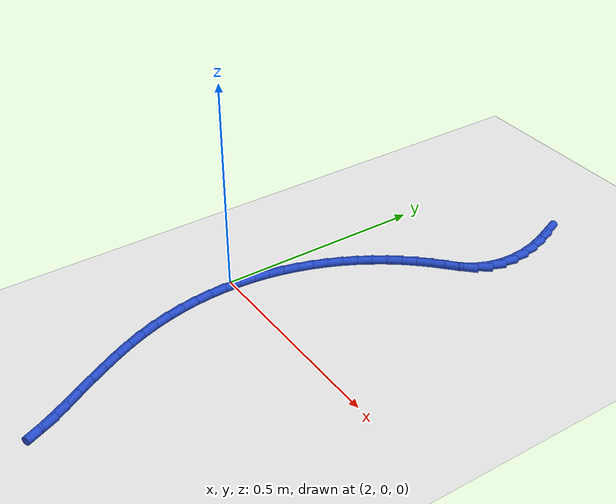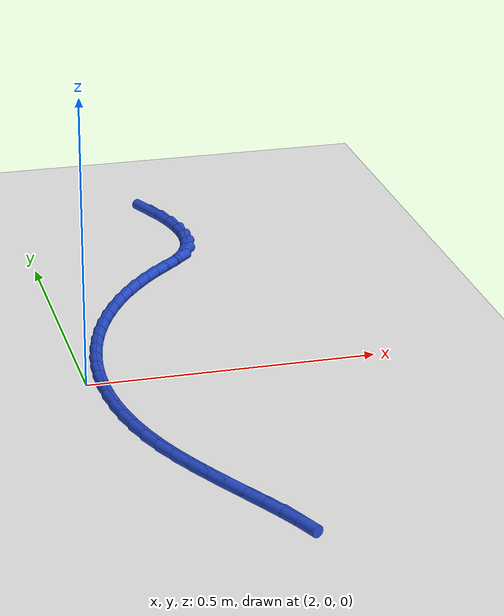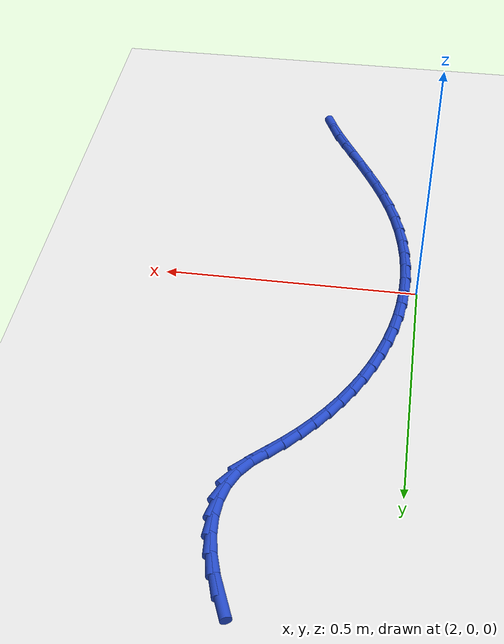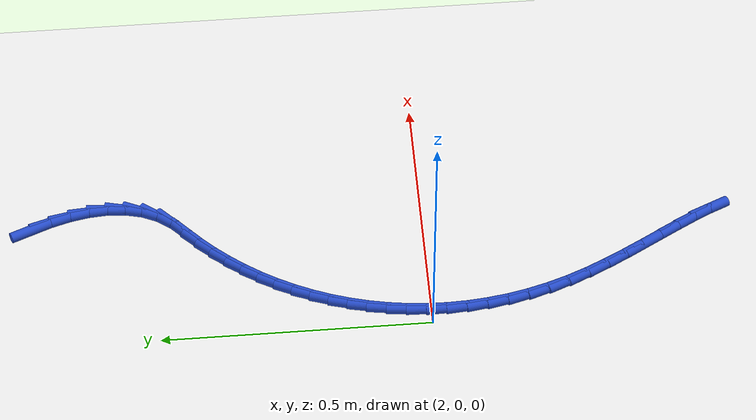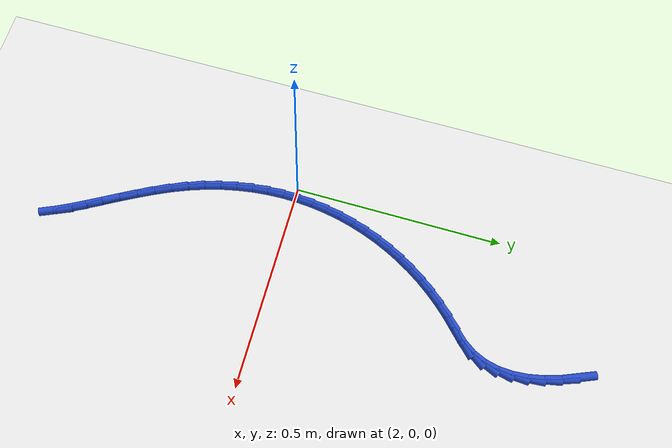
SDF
<sdf version="1.6">
 <world name="default">
  <model name="ground_plane">
   <static>1</static>
   <link name="link">
    <collision name="collision">
     <geometry><plane><normal>0 0 1</normal><size>100 100</size></plane></geometry>
     <surface><friction><ode><mu>100</mu><mu2>50</mu2></ode></friction></surface>
    </collision>
    <visual name="visual">
     <cast_shadows>0</cast_shadows>
     <geometry><plane><normal>0 0 1</normal><size>100 100</size></plane></geometry>
     <material>
      <script><uri>file://media/materials/scripts/gazebo.material</uri><name>Gazebo/WhiteGlow</name></script>
     </material>
    </visual>
   </link>
  </model>
  <model name="line">
   <link name="link_96">
    <pose>2.265692215892379 0.7318029230808033 0.01 0 1.57 -1.181016216009132</pose>
    <collision name="collision">
     <geometry><cylinder><radius>0.01</radius><length>0.08</length></cylinder></geometry>
    </collision>
    <visual name="visual">
     <material>
      <script><name>Gazebo/Blue</name><uri>file://media/materials/scripts/gazebo.material</uri></script>
     </material>
     <geometry><cylinder><radius>0.01</radius><length>0.08</length></cylinder></geometry>
    </visual>
   </link>
   <link name="link_97">
    <pose>2.280724212482479 0.6952107283278746 0.01 0 1.57 -1.2711691475474403</pose>
    <collision name="collision">
     <geometry><cylinder><radius>0.01</radius><length>0.08</length></cylinder></geometry>
    </collision>
    <visual name="visual">
     <material>
      <script><name>Gazebo/Blue</name><uri>file://media/materials/scripts/gazebo.material</uri></script>
     </material>
     <geometry><cylinder><radius>0.01</radius><length>0.08</length></cylinder></geometry>
    </visual>
   </link>
   <link name="link_98">
    <pose>2.2920473858776633 0.6585575901066739 0.01 0 1.57 -1.3741228434072295</pose>
    <collision name="collision">
     <geometry><cylinder><radius>0.01</radius><length>0.08</length></cylinder></geometry>
    </collision>
    <visual name="visual">
     <material>
      <script><name>Gazebo/Blue</name><uri>file://media/materials/scripts/gazebo.material</uri></script>
     </material>
     <geometry><cylinder><radius>0.01</radius><length>0.08</length></cylinder></geometry>
    </visual>
   </link>
   <link name="link_99">
    <pose>2.2992621877941346 0.6223476390954321 0.01 0 1.57 -1.4941831034301154</pose>
    <collision name="collision">
     <geometry><cylinder><radius>0.01</radius><length>0.08</length></cylinder></geometry>
    </collision>
    <visual name="visual">
     <material>
      <script><name>Gazebo/Blue</name><uri>file://media/materials/scripts/gazebo.material</uri></script>
     </material>
     <geometry><cylinder><radius>0.01</radius><length>0.08</length></cylinder></geometry>
    </visual>
   </link>
   <link name="link_100">
    <pose>2.301969069948098 0.5870850059723818 0.01 0 1.57 1.5058034385561772</pose>
    <collision name="collision">
     <geometry><cylinder><radius>0.01</radius><length>0.08</length></cylinder></geometry>
    </collision>
    <visual name="visual">
     <material>
      <script><name>Gazebo/Blue</name><uri>file://media/materials/scripts/gazebo.material</uri></script>
     </material>
     <geometry><cylinder><radius>0.01</radius><length>0.08</length></cylinder></geometry>
    </visual>
   </link>
   <link name="link_101">
    <pose>2.299768484055758 0.5532738214157533 0.01 0 1.57 1.3393438238442168</pose>
    <collision name="collision">
     <geometry><cylinder><radius>0.01</radius><length>0.08</length></cylinder></geometry>
    </collision>
    <visual name="visual">
     <material>
      <script><name>Gazebo/Blue</name><uri>file://media/materials/scripts/gazebo.material</uri></script>
     </material>
     <geometry><cylinder><radius>0.01</radius><length>0.08</length></cylinder></geometry>
    </visual>
   </link>
   <link name="link_102">
    <pose>2.2922608818333194 0.5214182161037794 0.01 0 1.57 1.1483381332462668</pose>
    <collision name="collision">
     <geometry><cylinder><radius>0.01</radius><length>0.08</length></cylinder></geometry>
    </collision>
    <visual name="visual">
     <material>
      <script><name>Gazebo/Blue</name><uri>file://media/materials/scripts/gazebo.material</uri></script>
     </material>
     <geometry><cylinder><radius>0.01</radius><length>0.08</length></cylinder></geometry>
    </visual>
   </link>
   <link name="link_103">
    <pose>2.279046714996986 0.4920223207146904 0.01 0 1.57 0.939731556013086</pose>
    <collision name="collision">
     <geometry><cylinder><radius>0.01</radius><length>0.08</length></cylinder></geometry>
    </collision>
    <visual name="visual">
     <material>
      <script><name>Gazebo/Blue</name><uri>file://media/materials/scripts/gazebo.material</uri></script>
     </material>
     <geometry><cylinder><radius>0.01</radius><length>0.08</length></cylinder></geometry>
    </visual>
   </link>
   <link name="link_104">
    <pose>2.259729893517736 0.4655879644502483 0.01 0 1.57 0.7730771669535672</pose>
    <collision name="collision">
     <geometry><cylinder><radius>0.01</radius><length>0.08</length></cylinder></geometry>
    </collision>
    <visual name="visual">
     <material>
      <script><name>Gazebo/Blue</name><uri>file://media/materials/scripts/gazebo.material</uri></script>
     </material>
     <geometry><cylinder><radius>0.01</radius><length>0.08</length></cylinder></geometry>
    </visual>
   </link>
   <link name="link_105">
    <pose>2.2352646793876345 0.4417183141501224 0.01 0 1.57 0.7542584982204077</pose>
    <collision name="collision">
     <geometry><cylinder><radius>0.01</radius><length>0.08</length></cylinder></geometry>
    </collision>
    <visual name="visual">
     <material>
      <script><name>Gazebo/Blue</name><uri>file://media/materials/scripts/gazebo.material</uri></script>
     </material>
     <geometry><cylinder><radius>0.01</radius><length>0.08</length></cylinder></geometry>
    </visual>
   </link>
   <link name="link_106">
    <pose>2.209858896756274 0.41784748488361484 0.01 0 1.57 0.8078697514522252</pose>
    <collision name="collision">
     <geometry><cylinder><radius>0.01</radius><length>0.08</length></cylinder></geometry>
    </collision>
    <visual name="visual">
     <material>
      <script><name>Gazebo/Blue</name><uri>file://media/materials/scripts/gazebo.material</uri></script>
     </material>
     <geometry><cylinder><radius>0.01</radius><length>0.08</length></cylinder></geometry>
    </visual>
   </link>
   <link name="link_107">
    <pose>2.185763935105501 0.3926445343507929 0.01 0 1.57 0.8635990559432635</pose>
    <collision name="collision">
     <geometry><cylinder><radius>0.01</radius><length>0.08</length></cylinder></geometry>
    </collision>
    <visual name="visual">
     <material>
      <script><name>Gazebo/Blue</name><uri>file://media/materials/scripts/gazebo.material</uri></script>
     </material>
     <geometry><cylinder><radius>0.01</radius><length>0.08</length></cylinder></geometry>
    </visual>
   </link>
   <link name="link_108">
    <pose>2.163106934507645 0.3661347938565807 0.01 0 1.57 0.9192725047897171</pose>
    <collision name="collision">
     <geometry><cylinder><radius>0.01</radius><length>0.08</length></cylinder></geometry>
    </collision>
    <visual name="visual">
     <material>
      <script><name>Gazebo/Blue</name><uri>file://media/materials/scripts/gazebo.material</uri></script>
     </material>
     <geometry><cylinder><radius>0.01</radius><length>0.08</length></cylinder></geometry>
    </visual>
   </link>
   <link name="link_109">
    <pose>2.141946441182527 0.33838738995480205 0.01 0 1.57 0.9749783208327027</pose>
    <collision name="collision">
     <geometry><cylinder><radius>0.01</radius><length>0.08</length></cylinder></geometry>
    </collision>
    <visual name="visual">
     <material>
      <script><name>Gazebo/Blue</name><uri>file://media/materials/scripts/gazebo.material</uri></script>
     </material>
     <geometry><cylinder><radius>0.01</radius><length>0.08</length></cylinder></geometry>
    </visual>
   </link>
   <link name="link_110">
    <pose>2.122341001349969 0.3094714491992794 0.01 0 1.57 1.030802465297198</pose>
    <collision name="collision">
     <geometry><cylinder><radius>0.01</radius><length>0.08</length></cylinder></geometry>
    </collision>
    <visual name="visual">
     <material>
      <script><name>Gazebo/Blue</name><uri>file://media/materials/scripts/gazebo.material</uri></script>
     </material>
     <geometry><cylinder><radius>0.01</radius><length>0.08</length></cylinder></geometry>
    </visual>
   </link>
   <link name="link_111">
    <pose>2.1043491612297935 0.2794560981438362 0.01 0 1.57 1.086825869114292</pose>
    <collision name="collision">
     <geometry><cylinder><radius>0.01</radius><length>0.08</length></cylinder></geometry>
    </collision>
    <visual name="visual">
     <material>
      <script><name>Gazebo/Blue</name><uri>file://media/materials/scripts/gazebo.material</uri></script>
     </material>
     <geometry><cylinder><radius>0.01</radius><length>0.08</length></cylinder></geometry>
    </visual>
   </link>
   <link name="link_112">
    <pose>2.088029467041821 0.24841046334229488 0.01 0 1.57 1.1431216769350114</pose>
    <collision name="collision">
     <geometry><cylinder><radius>0.01</radius><length>0.08</length></cylinder></geometry>
    </collision>
    <visual name="visual">
     <material>
      <script><name>Gazebo/Blue</name><uri>file://media/materials/scripts/gazebo.material</uri></script>
     </material>
     <geometry><cylinder><radius>0.01</radius><length>0.08</length></cylinder></geometry>
    </visual>
   </link>
   <link name="link_113">
    <pose>2.073440465005873 0.21640367134847904 0.01 0 1.57 1.199752513764216</pose>
    <collision name="collision">
     <geometry><cylinder><radius>0.01</radius><length>0.08</length></cylinder></geometry>
    </collision>
    <visual name="visual">
     <material>
      <script><name>Gazebo/Blue</name><uri>file://media/materials/scripts/gazebo.material</uri></script>
     </material>
     <geometry><cylinder><radius>0.01</radius><length>0.08</length></cylinder></geometry>
    </visual>
   </link>
   <link name="link_114">
    <pose>2.0606407013417725 0.18350484871621098 0.01 0 1.57 1.2567678043921269</pose>
    <collision name="collision">
     <geometry><cylinder><radius>0.01</radius><length>0.08</length></cylinder></geometry>
    </collision>
    <visual name="visual">
     <material>
      <script><name>Gazebo/Blue</name><uri>file://media/materials/scripts/gazebo.material</uri></script>
     </material>
     <geometry><cylinder><radius>0.01</radius><length>0.08</length></cylinder></geometry>
    </visual>
   </link>
   <link name="link_115">
    <pose>2.049688722269339 0.14978312199931443 0.01 0 1.57 1.314201201396575</pose>
    <collision name="collision">
     <geometry><cylinder><radius>0.01</radius><length>0.08</length></cylinder></geometry>
    </collision>
    <visual name="visual">
     <material>
      <script><name>Gazebo/Blue</name><uri>file://media/materials/scripts/gazebo.material</uri></script>
     </material>
     <geometry><cylinder><radius>0.01</radius><length>0.08</length></cylinder></geometry>
    </visual>
   </link>
   <link name="link_116">
    <pose>2.040643074008396 0.11530761775161197 0.01 0 1.57 1.3720682061549843</pose>
    <collision name="collision">
     <geometry><cylinder><radius>0.01</radius><length>0.08</length></cylinder></geometry>
    </collision>
    <visual name="visual">
     <material>
      <script><name>Gazebo/Blue</name><uri>file://media/materials/scripts/gazebo.material</uri></script>
     </material>
     <geometry><cylinder><radius>0.01</radius><length>0.08</length></cylinder></geometry>
    </visual>
   </link>
   <link name="link_117">
    <pose>2.0335623027787646 0.0801474625269257 0.01 0 1.57 1.4303640957477932</pose>
    <collision name="collision">
     <geometry><cylinder><radius>0.01</radius><length>0.08</length></cylinder></geometry>
    </collision>
    <visual name="visual">
     <material>
      <script><name>Gazebo/Blue</name><uri>file://media/materials/scripts/gazebo.material</uri></script>
     </material>
     <geometry><cylinder><radius>0.01</radius><length>0.08</length></cylinder></geometry>
    </visual>
   </link>
   <link name="link_118">
    <pose>2.028504954800266 0.044371782879080356 0.01 0 1.57 1.4890622924832966</pose>
    <collision name="collision">
     <geometry><cylinder><radius>0.01</radius><length>0.08</length></cylinder></geometry>
    </collision>
    <visual name="visual">
     <material>
      <script><name>Gazebo/Blue</name><uri>file://media/materials/scripts/gazebo.material</uri></script>
     </material>
     <geometry><cylinder><radius>0.01</radius><length>0.08</length></cylinder></geometry>
    </visual>
   </link>
   <link name="link_119">
    <pose>2.025529576292722 0.008049705361898044 0.01 0 1.57 1.548113326844729</pose>
    <collision name="collision">
     <geometry><cylinder><radius>0.01</radius><length>0.08</length></cylinder></geometry>
    </collision>
    <visual name="visual">
     <material>
      <script><name>Gazebo/Blue</name><uri>file://media/materials/scripts/gazebo.material</uri></script>
     </material>
     <geometry><cylinder><radius>0.01</radius><length>0.08</length></cylinder></geometry>
    </visual>
   </link>
   <link name="link_120">
    <pose>2.0246947134759545 -0.02874964347079828 0.01 0 1.57 -1.534148110018993</pose>
    <collision name="collision">
     <geometry><cylinder><radius>0.01</radius><length>0.08</length></cylinder></geometry>
    </collision>
    <visual name="visual">
     <material>
      <script><name>Gazebo/Blue</name><uri>file://media/materials/scripts/gazebo.material</uri></script>
     </material>
     <geometry><cylinder><radius>0.01</radius><length>0.08</length></cylinder></geometry>
    </visual>
   </link>
   <link name="link_121">
    <pose>2.026058912569785 -0.06595713706518563 0.01 0 1.57 -1.4746319738020246</pose>
    <collision name="collision">
     <geometry><cylinder><radius>0.01</radius><length>0.08</length></cylinder></geometry>
    </collision>
    <visual name="visual">
     <material>
      <script><name>Gazebo/Blue</name><uri>file://media/materials/scripts/gazebo.material</uri></script>
     </material>
     <geometry><cylinder><radius>0.01</radius><length>0.08</length></cylinder></geometry>
    </visual>
   </link>
   <link name="link_122">
    <pose>2.0296807197940354 -0.10350364886744196 0.01 0 1.57 -1.415047252355193</pose>
    <collision name="collision">
     <geometry><cylinder><radius>0.01</radius><length>0.08</length></cylinder></geometry>
    </collision>
    <visual name="visual">
     <material>
      <script><name>Gazebo/Blue</name><uri>file://media/materials/scripts/gazebo.material</uri></script>
     </material>
     <geometry><cylinder><radius>0.01</radius><length>0.08</length></cylinder></geometry>
    </visual>
   </link>
   <link name="link_123">
    <pose>2.0356186813685264 -0.14132005232374237 0.01 0 1.57 -1.355528834863005</pose>
    <collision name="collision">
     <geometry><cylinder><radius>0.01</radius><length>0.08</length></cylinder></geometry>
    </collision>
    <visual name="visual">
     <material>
      <script><name>Gazebo/Blue</name><uri>file://media/materials/scripts/gazebo.material</uri></script>
     </material>
     <geometry><cylinder><radius>0.01</radius><length>0.08</length></cylinder></geometry>
    </visual>
   </link>
   <link name="link_124">
    <pose>2.0439313435130804 -0.1793372208802649 0.01 0 1.57 -1.296226726151271</pose>
    <collision name="collision">
     <geometry><cylinder><radius>0.01</radius><length>0.08</length></cylinder></geometry>
    </collision>
    <visual name="visual">
     <material>
      <script><name>Gazebo/Blue</name><uri>file://media/materials/scripts/gazebo.material</uri></script>
     </material>
     <geometry><cylinder><radius>0.01</radius><length>0.08</length></cylinder></geometry>
    </visual>
   </link>
   <link name="link_125">
    <pose>2.054677252447519 -0.21748602798318656 0.01 0 1.57 -1.2373018277034327</pose>
    <collision name="collision">
     <geometry><cylinder><radius>0.01</radius><length>0.08</length></cylinder></geometry>
    </collision>
    <visual name="visual">
     <material>
      <script><name>Gazebo/Blue</name><uri>file://media/materials/scripts/gazebo.material</uri></script>
     </material>
     <geometry><cylinder><radius>0.01</radius><length>0.08</length></cylinder></geometry>
    </visual>
   </link>
   <link name="link_126">
    <pose>2.067914954391664 -0.25569734707868536 0.01 0 1.57 -1.179306962191239</pose>
    <collision name="collision">
     <geometry><cylinder><radius>0.01</radius><length>0.08</length></cylinder></geometry>
    </collision>
    <visual name="visual">
     <material>
      <script><name>Gazebo/Blue</name><uri>file://media/materials/scripts/gazebo.material</uri></script>
     </material>
     <geometry><cylinder><radius>0.01</radius><length>0.08</length></cylinder></geometry>
    </visual>
   </link>
   <link name="link_127">
    <pose>2.08368369252651 -0.29389708725127656 0.01 0 1.57 -1.12972846841303</pose>
    <collision name="collision">
     <geometry><cylinder><radius>0.01</radius><length>0.08</length></cylinder></geometry>
    </collision>
    <visual name="visual">
     <material>
      <script><name>Gazebo/Blue</name><uri>file://media/materials/scripts/gazebo.material</uri></script>
     </material>
     <geometry><cylinder><radius>0.01</radius><length>0.08</length></cylinder></geometry>
    </visual>
   </link>
   <link name="link_128">
    <pose>2.1016289999248046 -0.3319099030947247 0.01 0 1.57 -1.0939923002126046</pose>
    <collision name="collision">
     <geometry><cylinder><radius>0.01</radius><length>0.08</length></cylinder></geometry>
    </collision>
    <visual name="visual">
     <material>
      <script><name>Gazebo/Blue</name><uri>file://media/materials/scripts/gazebo.material</uri></script>
     </material>
     <geometry><cylinder><radius>0.01</radius><length>0.08</length></cylinder></geometry>
    </visual>
   </link>
   <link name="link_129">
    <pose>2.1210287492444 -0.36946589418045306 0.01 0 1.57 -1.0707955368181516</pose>
    <collision name="collision">
     <geometry><cylinder><radius>0.01</radius><length>0.08</length></cylinder></geometry>
    </collision>
    <visual name="visual">
     <material>
      <script><name>Gazebo/Blue</name><uri>file://media/materials/scripts/gazebo.material</uri></script>
     </material>
     <geometry><cylinder><radius>0.01</radius><length>0.08</length></cylinder></geometry>
    </visual>
   </link>
   <link name="link_130">
    <pose>2.141146727697601 -0.40629153758052333 0.01 0 1.57 -1.0594625521451364</pose>
    <collision name="collision">
     <geometry><cylinder><radius>0.01</radius><length>0.08</length></cylinder></geometry>
    </collision>
    <visual name="visual">
     <material>
      <script><name>Gazebo/Blue</name><uri>file://media/materials/scripts/gazebo.material</uri></script>
     </material>
     <geometry><cylinder><radius>0.01</radius><length>0.08</length></cylinder></geometry>
    </visual>
   </link>
   <link name="link_131">
    <pose>2.161246722496713 -0.4421133103669982 0.01 0 1.57 -1.0602871582208409</pose>
    <collision name="collision">
     <geometry><cylinder><radius>0.01</radius><length>0.08</length></cylinder></geometry>
    </collision>
    <visual name="visual">
     <material>
      <script><name>Gazebo/Blue</name><uri>file://media/materials/scripts/gazebo.material</uri></script>
     </material>
     <geometry><cylinder><radius>0.01</radius><length>0.08</length></cylinder></geometry>
    </visual>
   </link>
   <link name="link_132">
    <pose>2.180592520854042 -0.47665768961193766 0.01 0 1.57 -1.0747502246285063</pose>
    <collision name="collision">
     <geometry><cylinder><radius>0.01</radius><length>0.08</length></cylinder></geometry>
    </collision>
    <visual name="visual">
     <material>
      <script><name>Gazebo/Blue</name><uri>file://media/materials/scripts/gazebo.material</uri></script>
     </material>
     <geometry><cylinder><radius>0.01</radius><length>0.08</length></cylinder></geometry>
    </visual>
   </link>
   <link name="link_133">
    <pose>2.1984479099818945 -0.5096511523874045 0.01 0 1.57 -1.1060134808786322</pose>
    <collision name="collision">
     <geometry><cylinder><radius>0.01</radius><length>0.08</length></cylinder></geometry>
    </collision>
    <visual name="visual">
     <material>
      <script><name>Gazebo/Blue</name><uri>file://media/materials/scripts/gazebo.material</uri></script>
     </material>
     <geometry><cylinder><radius>0.01</radius><length>0.08</length></cylinder></geometry>
    </visual>
   </link>
   <link name="link_134">
    <pose>2.2140766770925753 -0.5408201757654606 0.01 0 1.57 -1.1599072143838136</pose>
    <collision name="collision">
     <geometry><cylinder><radius>0.01</radius><length>0.08</length></cylinder></geometry>
    </collision>
    <visual name="visual">
     <material>
      <script><name>Gazebo/Blue</name><uri>file://media/materials/scripts/gazebo.material</uri></script>
     </material>
     <geometry><cylinder><radius>0.01</radius><length>0.08</length></cylinder></geometry>
    </visual>
   </link>
  </model>
 </world>
</sdf>
